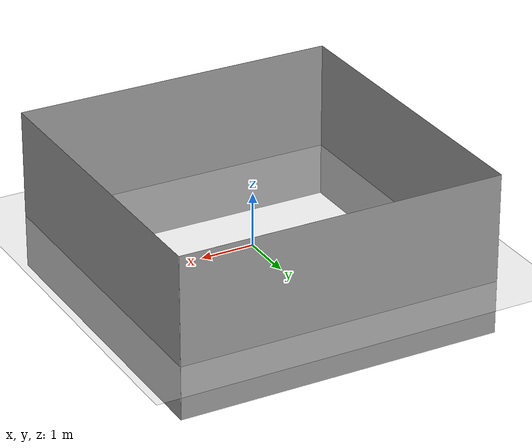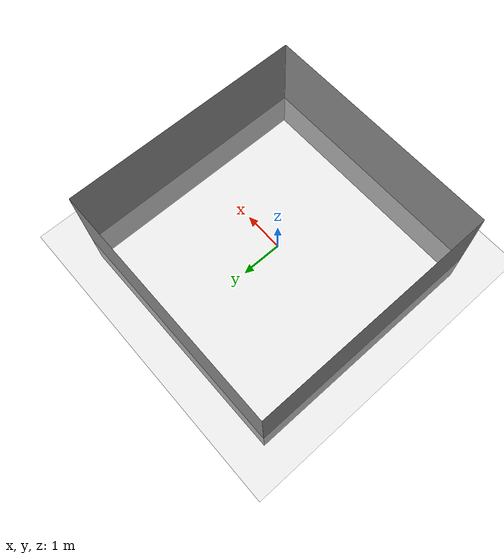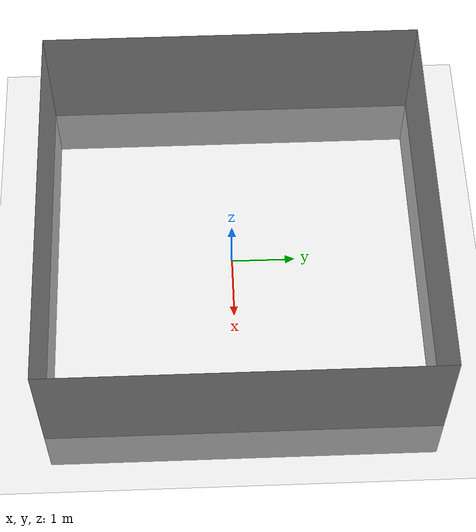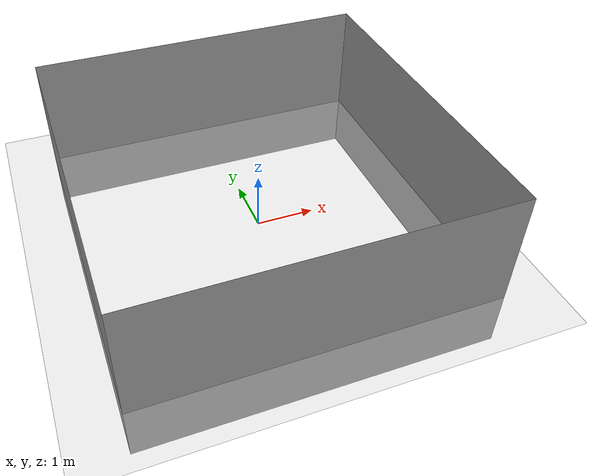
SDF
<sdf version="1.7">
 <world name="default">
  <model name="ground_plane">
   <static>1</static>
   <link name="link">
    <collision name="collision">
     <geometry><plane><normal>0 0 1</normal><size>100 100</size></plane></geometry>
     <surface>
      <contact><collide_bitmask>65535</collide_bitmask></contact>
      <friction><ode><mu>100</mu><mu2>50</mu2></ode></friction>
     </surface>
    </collision>
    <visual name="visual">
     <cast_shadows>0</cast_shadows>
     <geometry><plane><normal>0 0 1</normal><size>100 100</size></plane></geometry>
     <material>
      <script><uri>file://media/materials/scripts/gazebo.material</uri><name>Gazebo/Grey</name></script>
     </material>
    </visual>
   </link>
  </model>
  <model name="teo_room">
   <link name="link_0">
    <inertial>
     <mass>1</mass>
     <inertia><ixx>3.75</ixx><ixy>0</ixy><ixz>0</ixz><iyy>0.75</iyy><iyz>0</iyz><izz>3</izz></inertia>
    </inertial>
    <pose>3.00211 0 0 0 -0 0</pose>
    <visual name="visual">
     <geometry><box><size>0.001 6 3</size></box></geometry>
     <material>
      <lighting>1</lighting>
      <script><uri>file://media/materials/scripts/gazebo.material</uri><name>Gazebo/Grey</name></script>
      <shader type="pixel"><normal_map>__default__</normal_map></shader>
      <ambient>1 1 1 1</ambient>
      <diffuse>1 1 1 1</diffuse>
      <specular>1 1 1 1</specular>
      <emissive>0 0 0 1</emissive>
     </material>
    </visual>
    <collision name="collision">
     <geometry><box><size>0.001 6 3</size></box></geometry>
     <surface>
      <friction>
       <ode><mu>1</mu><mu2>1</mu2><fdir1>0 0 0</fdir1><slip1>0</slip1><slip2>0</slip2></ode>
       <torsional>
        <coefficient>1</coefficient>
        <patch_radius>0</patch_radius>
        <surface_radius>0</surface_radius>
        <use_patch_radius>1</use_patch_radius>
        <ode><slip>0</slip></ode>
       </torsional>
      </friction>
      <bounce><restitution_coefficient>0</restitution_coefficient><threshold>1e+06</threshold></bounce>
      <contact>
       <collide_without_contact>0</collide_without_contact>
       <collide_without_contact_bitmask>1</collide_without_contact_bitmask>
       <collide_bitmask>1</collide_bitmask>
       <ode>
        <soft_cfm>0</soft_cfm>
        <soft_erp>0.2</soft_erp>
        <kp>1e+13</kp>
        <kd>1</kd>
        <max_vel>0.01</max_vel>
        <min_depth>0</min_depth>
       </ode>
       <bullet>
        <split_impulse>1</split_impulse>
        <split_impulse_penetration_threshold>-0.01</split_impulse_penetration_threshold>
        <soft_cfm>0</soft_cfm>
        <soft_erp>0.2</soft_erp>
        <kp>1e+13</kp>
        <kd>1</kd>
       </bullet>
      </contact>
     </surface>
    </collision>
   </link>
   <link name="link_0_clone">
    <inertial>
     <mass>1</mass>
     <inertia><ixx>3.75</ixx><ixy>0</ixy><ixz>0</ixz><iyy>0.75</iyy><iyz>0</iyz><izz>3</izz></inertia>
    </inertial>
    <pose>-3.00037 0 0 0 -0 0</pose>
    <visual name="visual">
     <geometry><box><size>0.001 6 3</size></box></geometry>
     <material>
      <lighting>1</lighting>
      <script><uri>file://media/materials/scripts/gazebo.material</uri><name>Gazebo/Grey</name></script>
      <shader type="pixel"><normal_map>__default__</normal_map></shader>
      <ambient>1 1 1 1</ambient>
      <diffuse>1 1 1 1</diffuse>
      <specular>1 1 1 1</specular>
      <emissive>0 0 0 1</emissive>
     </material>
    </visual>
    <collision name="collision">
     <geometry><box><size>0.001 6 3</size></box></geometry>
     <surface>
      <friction>
       <ode><mu>1</mu><mu2>1</mu2><fdir1>0 0 0</fdir1><slip1>0</slip1><slip2>0</slip2></ode>
       <torsional>
        <coefficient>1</coefficient>
        <patch_radius>0</patch_radius>
        <surface_radius>0</surface_radius>
        <use_patch_radius>1</use_patch_radius>
        <ode><slip>0</slip></ode>
       </torsional>
      </friction>
      <bounce><restitution_coefficient>0</restitution_coefficient><threshold>1e+06</threshold></bounce>
      <contact>
       <collide_without_contact>0</collide_without_contact>
       <collide_without_contact_bitmask>1</collide_without_contact_bitmask>
       <collide_bitmask>1</collide_bitmask>
       <ode>
        <soft_cfm>0</soft_cfm>
        <soft_erp>0.2</soft_erp>
        <kp>1e+13</kp>
        <kd>1</kd>
        <max_vel>0.01</max_vel>
        <min_depth>0</min_depth>
       </ode>
       <bullet>
        <split_impulse>1</split_impulse>
        <split_impulse_penetration_threshold>-0.01</split_impulse_penetration_threshold>
        <soft_cfm>0</soft_cfm>
        <soft_erp>0.2</soft_erp>
        <kp>1e+13</kp>
        <kd>1</kd>
       </bullet>
      </contact>
     </surface>
    </collision>
   </link>
   <link name="link_0_clone_0">
    <inertial>
     <mass>1</mass>
     <inertia><ixx>3.75</ixx><ixy>0</ixy><ixz>0</ixz><iyy>0.75</iyy><iyz>0</iyz><izz>3</izz></inertia>
    </inertial>
    <pose>-0.000871 -2.99949 0 0 -0 0</pose>
    <visual name="visual">
     <pose>0 0 0 0 -0 1.5708</pose>
     <geometry><box><size>0.001 6 3</size></box></geometry>
     <material>
      <lighting>1</lighting>
      <script><uri>file://media/materials/scripts/gazebo.material</uri><name>Gazebo/Grey</name></script>
      <shader type="pixel"><normal_map>__default__</normal_map></shader>
      <ambient>1 1 1 1</ambient>
      <diffuse>1 1 1 1</diffuse>
      <specular>1 1 1 1</specular>
      <emissive>0 0 0 1</emissive>
     </material>
    </visual>
    <collision name="collision">
     <pose>0 0 0 0 -0 1.5708</pose>
     <geometry><box><size>0.001 6 3</size></box></geometry>
     <surface>
      <friction>
       <ode><mu>1</mu><mu2>1</mu2><fdir1>0 0 0</fdir1><slip1>0</slip1><slip2>0</slip2></ode>
       <torsional>
        <coefficient>1</coefficient>
        <patch_radius>0</patch_radius>
        <surface_radius>0</surface_radius>
        <use_patch_radius>1</use_patch_radius>
        <ode><slip>0</slip></ode>
       </torsional>
      </friction>
      <bounce><restitution_coefficient>0</restitution_coefficient><threshold>1e+06</threshold></bounce>
      <contact>
       <collide_without_contact>0</collide_without_contact>
       <collide_without_contact_bitmask>1</collide_without_contact_bitmask>
       <collide_bitmask>1</collide_bitmask>
       <ode>
        <soft_cfm>0</soft_cfm>
        <soft_erp>0.2</soft_erp>
        <kp>1e+13</kp>
        <kd>1</kd>
        <max_vel>0.01</max_vel>
        <min_depth>0</min_depth>
       </ode>
       <bullet>
        <split_impulse>1</split_impulse>
        <split_impulse_penetration_threshold>-0.01</split_impulse_penetration_threshold>
        <soft_cfm>0</soft_cfm>
        <soft_erp>0.2</soft_erp>
        <kp>1e+13</kp>
        <kd>1</kd>
       </bullet>
      </contact>
     </surface>
    </collision>
   </link>
   <link name="link_0_clone_0_clone">
    <inertial>
     <mass>1</mass>
     <inertia>
      <ixx>0.166667</ixx>
      <ixy>0</ixy>
      <ixz>0</ixz>
      <iyy>0.166667</iyy>
      <iyz>0</iyz>
      <izz>0.166667</izz>
     </inertia>
    </inertial>
    <pose>-0.000871 2.99949 0 0 -0 0</pose>
    <visual name="visual">
     <pose>0 0 0 0 -0 1.5708</pose>
     <geometry><box><size>0.001 6 3</size></box></geometry>
     <material>
      <lighting>1</lighting>
      <script><uri>file://media/materials/scripts/gazebo.material</uri><name>Gazebo/Grey</name></script>
      <shader type="pixel"><normal_map>__default__</normal_map></shader>
      <ambient>1 1 1 1</ambient>
      <diffuse>1 1 1 1</diffuse>
      <specular>1 1 1 1</specular>
      <emissive>0 0 0 1</emissive>
     </material>
    </visual>
    <collision name="collision">
     <pose>0 0 0 0 -0 1.5708</pose>
     <geometry><box><size>0.001 6 3</size></box></geometry>
     <surface>
      <friction>
       <ode><mu>1</mu><mu2>1</mu2><fdir1>0 0 0</fdir1><slip1>0</slip1><slip2>0</slip2></ode>
       <torsional>
        <coefficient>1</coefficient>
        <patch_radius>0</patch_radius>
        <surface_radius>0</surface_radius>
        <use_patch_radius>1</use_patch_radius>
        <ode><slip>0</slip></ode>
       </torsional>
      </friction>
      <bounce><restitution_coefficient>0</restitution_coefficient><threshold>1e+06</threshold></bounce>
      <contact>
       <collide_without_contact>0</collide_without_contact>
       <collide_without_contact_bitmask>1</collide_without_contact_bitmask>
       <collide_bitmask>1</collide_bitmask>
       <ode>
        <soft_cfm>0</soft_cfm>
        <soft_erp>0.2</soft_erp>
        <kp>1e+13</kp>
        <kd>1</kd>
        <max_vel>0.01</max_vel>
        <min_depth>0</min_depth>
       </ode>
       <bullet>
        <split_impulse>1</split_impulse>
        <split_impulse_penetration_threshold>-0.01</split_impulse_penetration_threshold>
        <soft_cfm>0</soft_cfm>
        <soft_erp>0.2</soft_erp>
        <kp>1e+13</kp>
        <kd>1</kd>
       </bullet>
      </contact>
     </surface>
    </collision>
   </link>
   <joint name="link_0_JOINT_0" type="fixed">
    <parent>link_0</parent>
    <child>link_0_clone_0_clone</child>
    <physics>
     <ode><limit><cfm>0</cfm><erp>0.2</erp></limit><suspension><cfm>0</cfm><erp>0.2</erp></suspension></ode>
    </physics>
   </joint>
   <joint name="link_0_JOINT_2" type="fixed">
    <parent>link_0</parent>
    <child>link_0_clone_0</child>
    <physics>
     <ode><limit><cfm>0</cfm><erp>0.2</erp></limit><suspension><cfm>0</cfm><erp>0.2</erp></suspension></ode>
    </physics>
   </joint>
   <joint name="link_0_clone_0_JOINT_3" type="fixed">
    <parent>link_0_clone_0</parent>
    <child>link_0_clone</child>
    <physics>
     <ode><limit><cfm>0</cfm><erp>0.2</erp></limit><suspension><cfm>0</cfm><erp>0.2</erp></suspension></ode>
    </physics>
   </joint>
   <static>1</static>
   <pose>-0.013122 0.086469 0.5 0 -0 0</pose>
  </model>
 </world>
</sdf>
